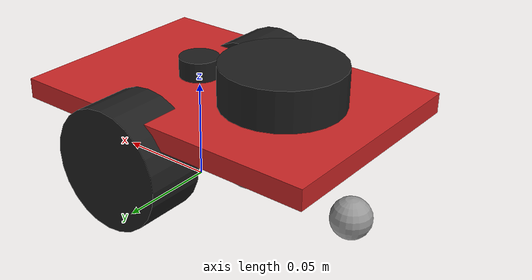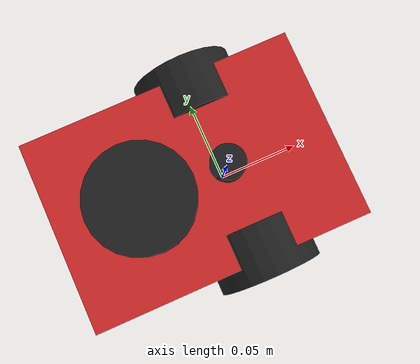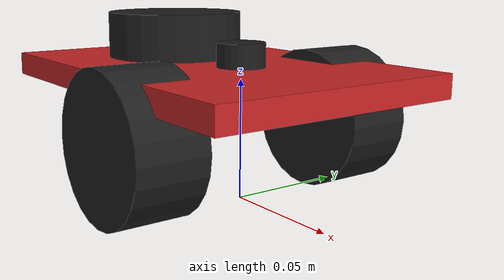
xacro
<?xml version="1.0"?>
<robot name="red_robot" xmlns:xacro="http://www.ros.org/wiki/xacro">
  <!-- Constants for robot dimensions -->
  <xacro:property name="PI" value="3.1415926535897931"/>

  <!-- Import Rviz colors -->
  <xacro:include filename="$(find red_robot_base)/urdf/materials.xacro" />

  <!-- Base Link -->
  <link name="base_link">
    <visual name="top_plate">
      <origin xyz="-0.02 0 0.05" rpy="0 0 0"/>
      <geometry>
	    <box size=".16 .11 .01"/>
      </geometry>
      <material name="red"/>
    </visual>
    <visual name="caster">
      <origin xyz="-0.09 0.0 0.01" rpy="0 0 0"/>
      <geometry>
        <sphere  radius="0.01"/>
      </geometry>
      <material name="grey"/>
    </visual>
  </link>

  <link name="left_wheel">
    <collision name="collision">
      <origin xyz="0 0.0 0" rpy="0 1.5707 1.5707"/>
      <geometry>
         <cylinder  length="0.03" radius="0.03"/>
      </geometry>
    </collision>
    <visual name="visual">
      <origin xyz="0 0.0 0" rpy="0 1.5707 1.5707"/>
      <geometry>
        <cylinder  length="0.03" radius="0.03"/>
      </geometry>
      <material name="black"/>
    </visual>
  </link>

  <joint type="revolute" name="left_wheel_joint">
    <origin xyz="0 0.05 0.03" rpy="0 0 0"/>
    <child link="left_wheel">left_wheel</child>
    <parent link="base_link">base_link</parent>
    <axis xyz="0 1 0"/>
    <limit effort="100" velocity="100.0"  lower="-5000" upper="5000" />
  </joint>

  <link name="right_wheel">
    <collision name="collision">
      <origin xyz="0 0.0 0" rpy="0 1.5707 1.5707"/>
      <geometry>
         <cylinder  length="0.03" radius="0.03"/>
      </geometry>
    </collision>
    <visual name="visual">
      <origin xyz="0 0.0 0" rpy="0 1.5707 1.5707"/>
      <geometry>
        <cylinder  length="0.03" radius="0.03"/>
      </geometry>
      <material name="black"/>
    </visual>
  </link>

  <joint type="revolute" name="right_wheel_joint">
    <origin xyz="0 -0.05 0.03" rpy="0 0 0"/>
    <child link="right_wheel">right_wheel</child>
    <parent link="base_link">base_link</parent>
    <axis xyz="0 1 0"/>
    <limit effort="100" velocity="100.0"  lower="-5000" upper="5000" />
  </joint>

  <link name="laser">
    <visual>
      <origin xyz="0 0.0 0" rpy="0 0 0"/>
      <geometry>
        <cylinder length="0.05" radius="0.03"/>
      </geometry>
      <material name="black"/>
    </visual>
  </link>

  <joint type="fixed" name="laser_to_base_joint">
    <origin rpy="0 0 0" xyz="-0.05 0 0.05"/>
    <child link="laser"/>
    <parent link="base_link"/>
  </joint>

  <link name="imu">
    <visual>
      <origin xyz="0 0.0 0" rpy="0 0 0"/>
      <geometry>
        <cylinder length="0.01" radius="0.01"/>
      </geometry>
      <material name="black"/>
    </visual>
  </link>

  <joint type="fixed" name="imu_to_base_joint">
    <origin rpy="0 0 -1.5708" xyz="0 0 0.06"/>
    <child link="imu"/>
    <parent link="base_link"/>
  </joint>

</robot>
